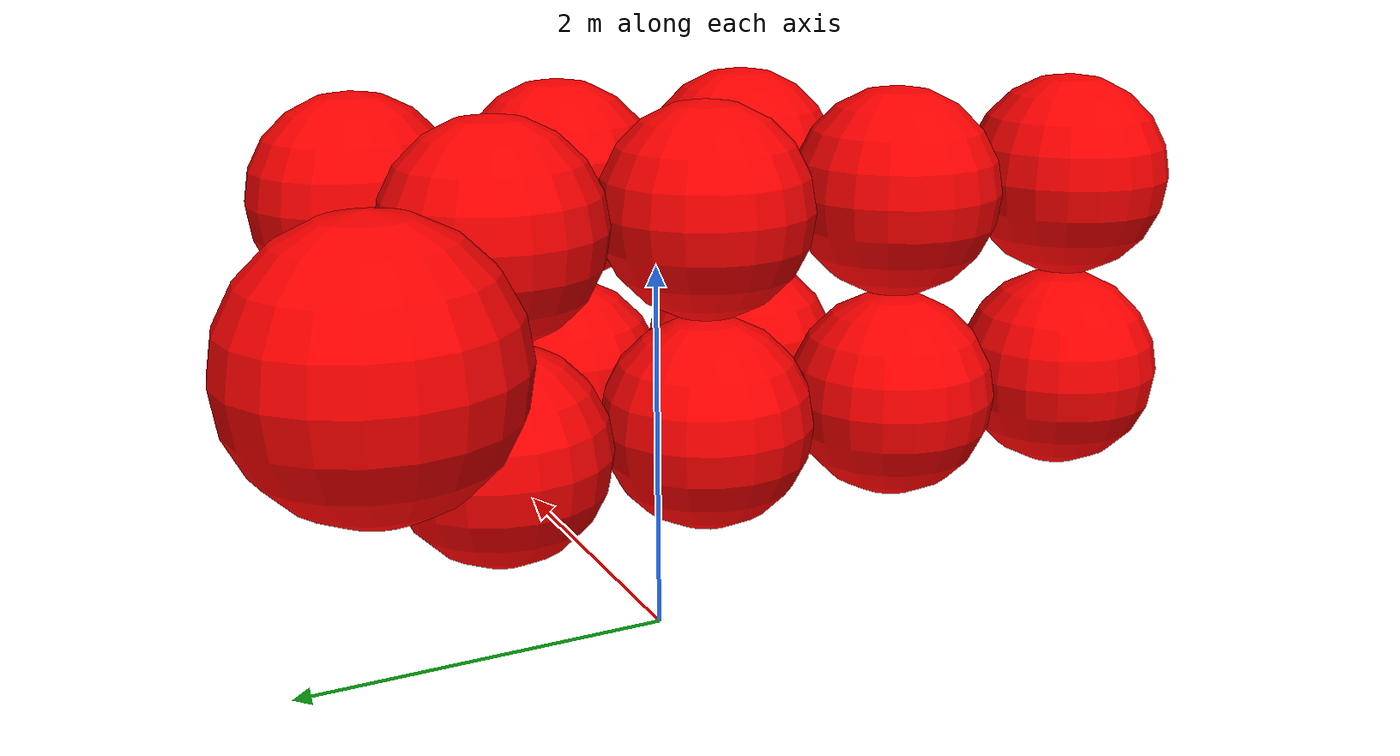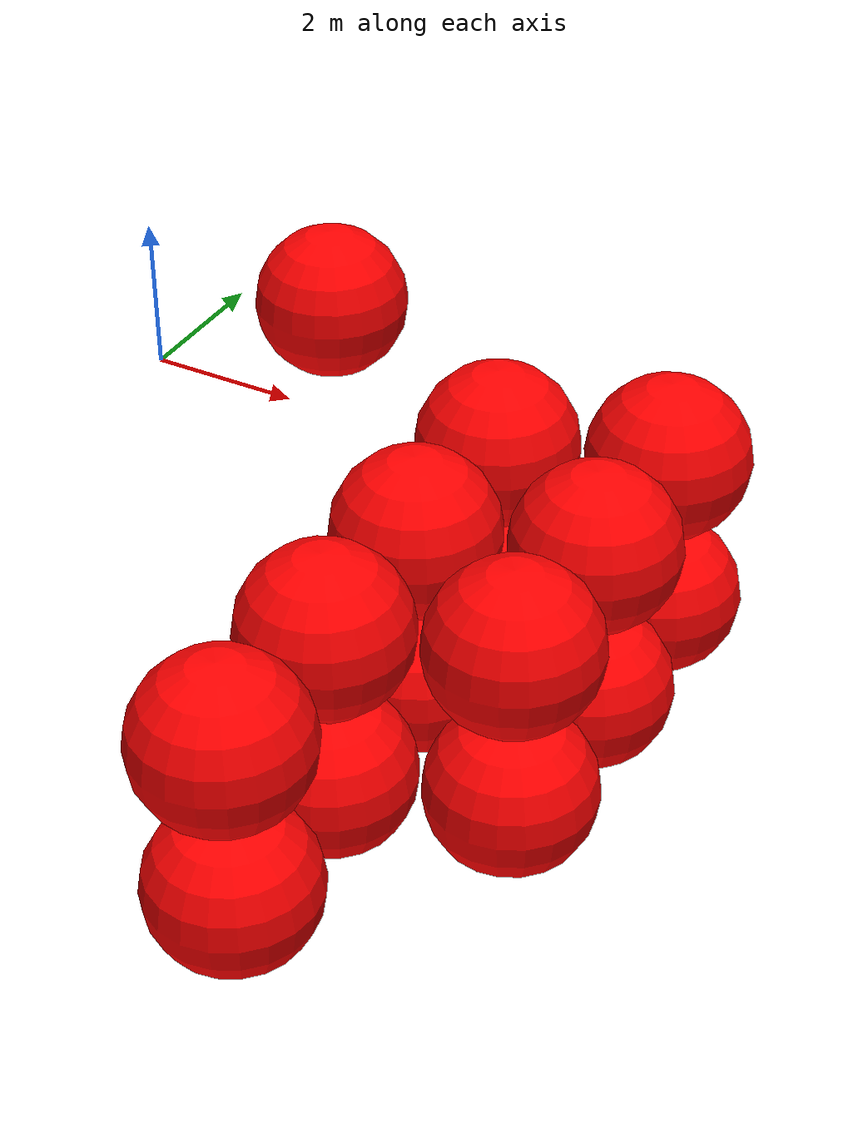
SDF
<sdf version="1.8">
 <world name="3d_world">
  <model name="obstacle_8" canonical_link="obstacle">
   <static>true</static>
   <pose relative_to="world">2.10 0.98 1.00 0 0 0</pose>
   <link name="obstacle">
    <pose relative_to="__model__">0.0 0 0.0 0 0 0</pose>
    <visual name="visual">
     <geometry><sphere><radius>1.00</radius></sphere></geometry>
     <material>
      <ambient>1.0 0.0 0.0 1</ambient>
      <diffuse>1.0 0.0 0.0 1</diffuse>
      <specular>1.0 0.0 0.0 1</specular>
     </material>
    </visual>
    <collision name="collision"><geometry><sphere><radius>1.00</radius></sphere></geometry></collision>
    <enable_gravity>false</enable_gravity>
   </link>
   <plugin filename="ignition-gazebo-velocity-control-system" name="ignition::gazebo::systems::VelocityControl">
    <initial_linear>0.00 0.00 0.00</initial_linear>
    <initial_angular>0 0 0</initial_angular>
   </plugin>
   <plugin filename="ignition-gazebo-odometry-publisher-system" name="ignition::gazebo::systems::OdometryPublisher">
    <dimensions>3</dimensions>
   </plugin>
  </model>
  <model name="obstacle_9" canonical_link="obstacle">
   <static>true</static>
   <pose relative_to="world">7.42 -4.26 -1.00 0 0 0</pose>
   <link name="obstacle">
    <pose relative_to="__model__">0.0 0 0.0 0 0 0</pose>
    <visual name="visual">
     <geometry><sphere><radius>1.00</radius></sphere></geometry>
     <material>
      <ambient>1.0 0.0 0.0 1</ambient>
      <diffuse>1.0 0.0 0.0 1</diffuse>
      <specular>1.0 0.0 0.0 1</specular>
     </material>
    </visual>
    <collision name="collision"><geometry><sphere><radius>1.00</radius></sphere></geometry></collision>
    <enable_gravity>false</enable_gravity>
   </link>
   <plugin filename="ignition-gazebo-velocity-control-system" name="ignition::gazebo::systems::VelocityControl">
    <initial_linear>0.00 0.00 0.00</initial_linear>
    <initial_angular>0 0 0</initial_angular>
   </plugin>
   <plugin filename="ignition-gazebo-odometry-publisher-system" name="ignition::gazebo::systems::OdometryPublisher">
    <dimensions>3</dimensions>
   </plugin>
  </model>
  <model name="obstacle_10" canonical_link="obstacle">
   <static>true</static>
   <pose relative_to="world">7.42 -2.26 -1.00 0 0 0</pose>
   <link name="obstacle">
    <pose relative_to="__model__">0.0 0 0.0 0 0 0</pose>
    <visual name="visual">
     <geometry><sphere><radius>1.00</radius></sphere></geometry>
     <material>
      <ambient>1.0 0.0 0.0 1</ambient>
      <diffuse>1.0 0.0 0.0 1</diffuse>
      <specular>1.0 0.0 0.0 1</specular>
     </material>
    </visual>
    <collision name="collision"><geometry><sphere><radius>1.00</radius></sphere></geometry></collision>
    <enable_gravity>false</enable_gravity>
   </link>
   <plugin filename="ignition-gazebo-velocity-control-system" name="ignition::gazebo::systems::VelocityControl">
    <initial_linear>0.00 0.00 0.00</initial_linear>
    <initial_angular>0 0 0</initial_angular>
   </plugin>
   <plugin filename="ignition-gazebo-odometry-publisher-system" name="ignition::gazebo::systems::OdometryPublisher">
    <dimensions>3</dimensions>
   </plugin>
  </model>
  <model name="obstacle_11" canonical_link="obstacle">
   <static>true</static>
   <pose relative_to="world">7.42 -0.26 -1.00 0 0 0</pose>
   <link name="obstacle">
    <pose relative_to="__model__">0.0 0 0.0 0 0 0</pose>
    <visual name="visual">
     <geometry><sphere><radius>1.00</radius></sphere></geometry>
     <material>
      <ambient>1.0 0.0 0.0 1</ambient>
      <diffuse>1.0 0.0 0.0 1</diffuse>
      <specular>1.0 0.0 0.0 1</specular>
     </material>
    </visual>
    <collision name="collision"><geometry><sphere><radius>1.00</radius></sphere></geometry></collision>
    <enable_gravity>false</enable_gravity>
   </link>
   <plugin filename="ignition-gazebo-velocity-control-system" name="ignition::gazebo::systems::VelocityControl">
    <initial_linear>0.00 0.00 0.00</initial_linear>
    <initial_angular>0 0 0</initial_angular>
   </plugin>
   <plugin filename="ignition-gazebo-odometry-publisher-system" name="ignition::gazebo::systems::OdometryPublisher">
    <dimensions>3</dimensions>
   </plugin>
  </model>
  <model name="obstacle_12" canonical_link="obstacle">
   <static>true</static>
   <pose relative_to="world">7.42 -4.26 1.00 0 0 0</pose>
   <link name="obstacle">
    <pose relative_to="__model__">0.0 0 0.0 0 0 0</pose>
    <visual name="visual">
     <geometry><sphere><radius>1.00</radius></sphere></geometry>
     <material>
      <ambient>1.0 0.0 0.0 1</ambient>
      <diffuse>1.0 0.0 0.0 1</diffuse>
      <specular>1.0 0.0 0.0 1</specular>
     </material>
    </visual>
    <collision name="collision"><geometry><sphere><radius>1.00</radius></sphere></geometry></collision>
    <enable_gravity>false</enable_gravity>
   </link>
   <plugin filename="ignition-gazebo-velocity-control-system" name="ignition::gazebo::systems::VelocityControl">
    <initial_linear>0.00 0.00 0.00</initial_linear>
    <initial_angular>0 0 0</initial_angular>
   </plugin>
   <plugin filename="ignition-gazebo-odometry-publisher-system" name="ignition::gazebo::systems::OdometryPublisher">
    <dimensions>3</dimensions>
   </plugin>
  </model>
  <model name="obstacle_13" canonical_link="obstacle">
   <static>true</static>
   <pose relative_to="world">7.42 -2.26 1.00 0 0 0</pose>
   <link name="obstacle">
    <pose relative_to="__model__">0.0 0 0.0 0 0 0</pose>
    <visual name="visual">
     <geometry><sphere><radius>1.00</radius></sphere></geometry>
     <material>
      <ambient>1.0 0.0 0.0 1</ambient>
      <diffuse>1.0 0.0 0.0 1</diffuse>
      <specular>1.0 0.0 0.0 1</specular>
     </material>
    </visual>
    <collision name="collision"><geometry><sphere><radius>1.00</radius></sphere></geometry></collision>
    <enable_gravity>false</enable_gravity>
   </link>
   <plugin filename="ignition-gazebo-velocity-control-system" name="ignition::gazebo::systems::VelocityControl">
    <initial_linear>0.00 0.00 0.00</initial_linear>
    <initial_angular>0 0 0</initial_angular>
   </plugin>
   <plugin filename="ignition-gazebo-odometry-publisher-system" name="ignition::gazebo::systems::OdometryPublisher">
    <dimensions>3</dimensions>
   </plugin>
  </model>
  <model name="obstacle_14" canonical_link="obstacle">
   <static>true</static>
   <pose relative_to="world">7.42 -0.26 1.00 0 0 0</pose>
   <link name="obstacle">
    <pose relative_to="__model__">0.0 0 0.0 0 0 0</pose>
    <visual name="visual">
     <geometry><sphere><radius>1.00</radius></sphere></geometry>
     <material>
      <ambient>1.0 0.0 0.0 1</ambient>
      <diffuse>1.0 0.0 0.0 1</diffuse>
      <specular>1.0 0.0 0.0 1</specular>
     </material>
    </visual>
    <collision name="collision"><geometry><sphere><radius>1.00</radius></sphere></geometry></collision>
    <enable_gravity>false</enable_gravity>
   </link>
   <plugin filename="ignition-gazebo-velocity-control-system" name="ignition::gazebo::systems::VelocityControl">
    <initial_linear>0.00 0.00 0.00</initial_linear>
    <initial_angular>0 0 0</initial_angular>
   </plugin>
   <plugin filename="ignition-gazebo-odometry-publisher-system" name="ignition::gazebo::systems::OdometryPublisher">
    <dimensions>3</dimensions>
   </plugin>
  </model>
  <model name="obstacle_19" canonical_link="obstacle">
   <static>true</static>
   <pose relative_to="world">5.52 -6.95 -1.00 0 0 0</pose>
   <link name="obstacle">
    <pose relative_to="__model__">0.0 0 0.0 0 0 0</pose>
    <visual name="visual">
     <geometry><sphere><radius>1.00</radius></sphere></geometry>
     <material>
      <ambient>1.0 0.0 0.0 1</ambient>
      <diffuse>1.0 0.0 0.0 1</diffuse>
      <specular>1.0 0.0 0.0 1</specular>
     </material>
    </visual>
    <collision name="collision"><geometry><sphere><radius>1.00</radius></sphere></geometry></collision>
    <enable_gravity>false</enable_gravity>
   </link>
   <plugin filename="ignition-gazebo-velocity-control-system" name="ignition::gazebo::systems::VelocityControl">
    <initial_linear>0.00 0.00 0.00</initial_linear>
    <initial_angular>0 0 0</initial_angular>
   </plugin>
   <plugin filename="ignition-gazebo-odometry-publisher-system" name="ignition::gazebo::systems::OdometryPublisher">
    <dimensions>3</dimensions>
   </plugin>
  </model>
  <model name="obstacle_20" canonical_link="obstacle">
   <static>true</static>
   <pose relative_to="world">5.52 -4.95 -1.00 0 0 0</pose>
   <link name="obstacle">
    <pose relative_to="__model__">0.0 0 0.0 0 0 0</pose>
    <visual name="visual">
     <geometry><sphere><radius>1.00</radius></sphere></geometry>
     <material>
      <ambient>1.0 0.0 0.0 1</ambient>
      <diffuse>1.0 0.0 0.0 1</diffuse>
      <specular>1.0 0.0 0.0 1</specular>
     </material>
    </visual>
    <collision name="collision"><geometry><sphere><radius>1.00</radius></sphere></geometry></collision>
    <enable_gravity>false</enable_gravity>
   </link>
   <plugin filename="ignition-gazebo-velocity-control-system" name="ignition::gazebo::systems::VelocityControl">
    <initial_linear>0.00 0.00 0.00</initial_linear>
    <initial_angular>0 0 0</initial_angular>
   </plugin>
   <plugin filename="ignition-gazebo-odometry-publisher-system" name="ignition::gazebo::systems::OdometryPublisher">
    <dimensions>3</dimensions>
   </plugin>
  </model>
  <model name="obstacle_21" canonical_link="obstacle">
   <static>true</static>
   <pose relative_to="world">5.52 -2.95 -1.00 0 0 0</pose>
   <link name="obstacle">
    <pose relative_to="__model__">0.0 0 0.0 0 0 0</pose>
    <visual name="visual">
     <geometry><sphere><radius>1.00</radius></sphere></geometry>
     <material>
      <ambient>1.0 0.0 0.0 1</ambient>
      <diffuse>1.0 0.0 0.0 1</diffuse>
      <specular>1.0 0.0 0.0 1</specular>
     </material>
    </visual>
    <collision name="collision"><geometry><sphere><radius>1.00</radius></sphere></geometry></collision>
    <enable_gravity>false</enable_gravity>
   </link>
   <plugin filename="ignition-gazebo-velocity-control-system" name="ignition::gazebo::systems::VelocityControl">
    <initial_linear>0.00 0.00 0.00</initial_linear>
    <initial_angular>0 0 0</initial_angular>
   </plugin>
   <plugin filename="ignition-gazebo-odometry-publisher-system" name="ignition::gazebo::systems::OdometryPublisher">
    <dimensions>3</dimensions>
   </plugin>
  </model>
  <model name="obstacle_22" canonical_link="obstacle">
   <static>true</static>
   <pose relative_to="world">5.52 -0.95 -1.00 0 0 0</pose>
   <link name="obstacle">
    <pose relative_to="__model__">0.0 0 0.0 0 0 0</pose>
    <visual name="visual">
     <geometry><sphere><radius>1.00</radius></sphere></geometry>
     <material>
      <ambient>1.0 0.0 0.0 1</ambient>
      <diffuse>1.0 0.0 0.0 1</diffuse>
      <specular>1.0 0.0 0.0 1</specular>
     </material>
    </visual>
    <collision name="collision"><geometry><sphere><radius>1.00</radius></sphere></geometry></collision>
    <enable_gravity>false</enable_gravity>
   </link>
   <plugin filename="ignition-gazebo-velocity-control-system" name="ignition::gazebo::systems::VelocityControl">
    <initial_linear>0.00 0.00 0.00</initial_linear>
    <initial_angular>0 0 0</initial_angular>
   </plugin>
   <plugin filename="ignition-gazebo-odometry-publisher-system" name="ignition::gazebo::systems::OdometryPublisher">
    <dimensions>3</dimensions>
   </plugin>
  </model>
  <model name="obstacle_23" canonical_link="obstacle">
   <static>true</static>
   <pose relative_to="world">5.52 -6.95 1.00 0 0 0</pose>
   <link name="obstacle">
    <pose relative_to="__model__">0.0 0 0.0 0 0 0</pose>
    <visual name="visual">
     <geometry><sphere><radius>1.00</radius></sphere></geometry>
     <material>
      <ambient>1.0 0.0 0.0 1</ambient>
      <diffuse>1.0 0.0 0.0 1</diffuse>
      <specular>1.0 0.0 0.0 1</specular>
     </material>
    </visual>
    <collision name="collision"><geometry><sphere><radius>1.00</radius></sphere></geometry></collision>
    <enable_gravity>false</enable_gravity>
   </link>
   <plugin filename="ignition-gazebo-velocity-control-system" name="ignition::gazebo::systems::VelocityControl">
    <initial_linear>0.00 0.00 0.00</initial_linear>
    <initial_angular>0 0 0</initial_angular>
   </plugin>
   <plugin filename="ignition-gazebo-odometry-publisher-system" name="ignition::gazebo::systems::OdometryPublisher">
    <dimensions>3</dimensions>
   </plugin>
  </model>
  <model name="obstacle_24" canonical_link="obstacle">
   <static>true</static>
   <pose relative_to="world">5.52 -4.95 1.00 0 0 0</pose>
   <link name="obstacle">
    <pose relative_to="__model__">0.0 0 0.0 0 0 0</pose>
    <visual name="visual">
     <geometry><sphere><radius>1.00</radius></sphere></geometry>
     <material>
      <ambient>1.0 0.0 0.0 1</ambient>
      <diffuse>1.0 0.0 0.0 1</diffuse>
      <specular>1.0 0.0 0.0 1</specular>
     </material>
    </visual>
    <collision name="collision"><geometry><sphere><radius>1.00</radius></sphere></geometry></collision>
    <enable_gravity>false</enable_gravity>
   </link>
   <plugin filename="ignition-gazebo-velocity-control-system" name="ignition::gazebo::systems::VelocityControl">
    <initial_linear>0.00 0.00 0.00</initial_linear>
    <initial_angular>0 0 0</initial_angular>
   </plugin>
   <plugin filename="ignition-gazebo-odometry-publisher-system" name="ignition::gazebo::systems::OdometryPublisher">
    <dimensions>3</dimensions>
   </plugin>
  </model>
  <model name="obstacle_25" canonical_link="obstacle">
   <static>true</static>
   <pose relative_to="world">5.52 -2.95 1.00 0 0 0</pose>
   <link name="obstacle">
    <pose relative_to="__model__">0.0 0 0.0 0 0 0</pose>
    <visual name="visual">
     <geometry><sphere><radius>1.00</radius></sphere></geometry>
     <material>
      <ambient>1.0 0.0 0.0 1</ambient>
      <diffuse>1.0 0.0 0.0 1</diffuse>
      <specular>1.0 0.0 0.0 1</specular>
     </material>
    </visual>
    <collision name="collision"><geometry><sphere><radius>1.00</radius></sphere></geometry></collision>
    <enable_gravity>false</enable_gravity>
   </link>
   <plugin filename="ignition-gazebo-velocity-control-system" name="ignition::gazebo::systems::VelocityControl">
    <initial_linear>0.00 0.00 0.00</initial_linear>
    <initial_angular>0 0 0</initial_angular>
   </plugin>
   <plugin filename="ignition-gazebo-odometry-publisher-system" name="ignition::gazebo::systems::OdometryPublisher">
    <dimensions>3</dimensions>
   </plugin>
  </model>
  <model name="obstacle_26" canonical_link="obstacle">
   <static>true</static>
   <pose relative_to="world">5.52 -0.95 1.00 0 0 0</pose>
   <link name="obstacle">
    <pose relative_to="__model__">0.0 0 0.0 0 0 0</pose>
    <visual name="visual">
     <geometry><sphere><radius>1.00</radius></sphere></geometry>
     <material>
      <ambient>1.0 0.0 0.0 1</ambient>
      <diffuse>1.0 0.0 0.0 1</diffuse>
      <specular>1.0 0.0 0.0 1</specular>
     </material>
    </visual>
    <collision name="collision"><geometry><sphere><radius>1.00</radius></sphere></geometry></collision>
    <enable_gravity>false</enable_gravity>
   </link>
   <plugin filename="ignition-gazebo-velocity-control-system" name="ignition::gazebo::systems::VelocityControl">
    <initial_linear>0.00 0.00 0.00</initial_linear>
    <initial_angular>0 0 0</initial_angular>
   </plugin>
   <plugin filename="ignition-gazebo-odometry-publisher-system" name="ignition::gazebo::systems::OdometryPublisher">
    <dimensions>3</dimensions>
   </plugin>
  </model>
 </world>
</sdf>
